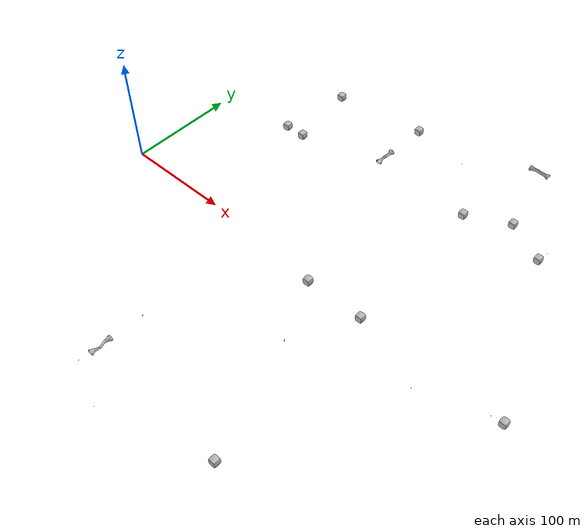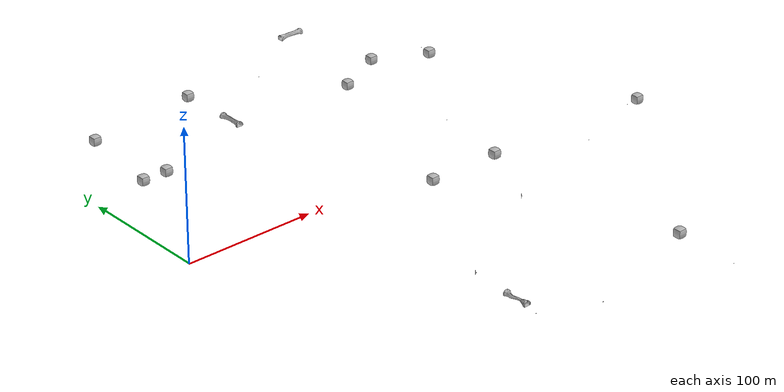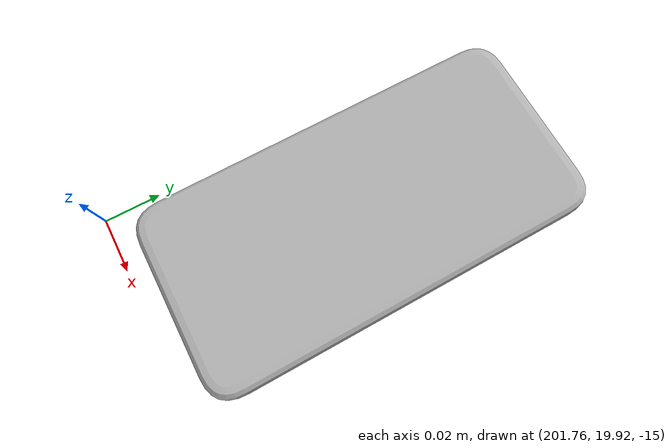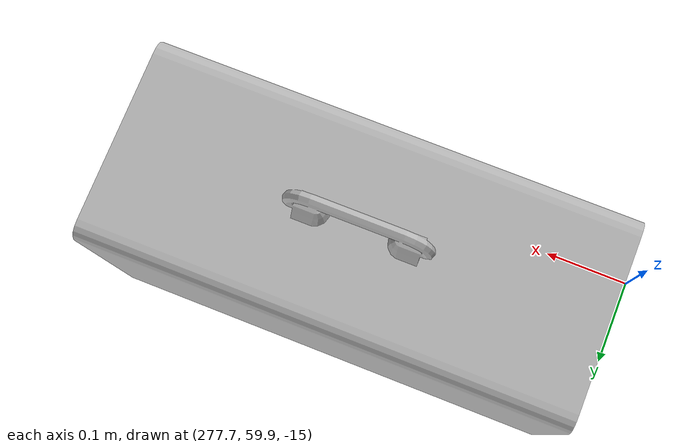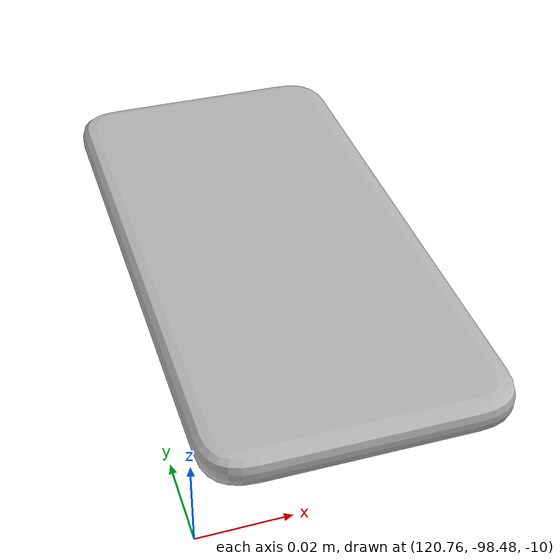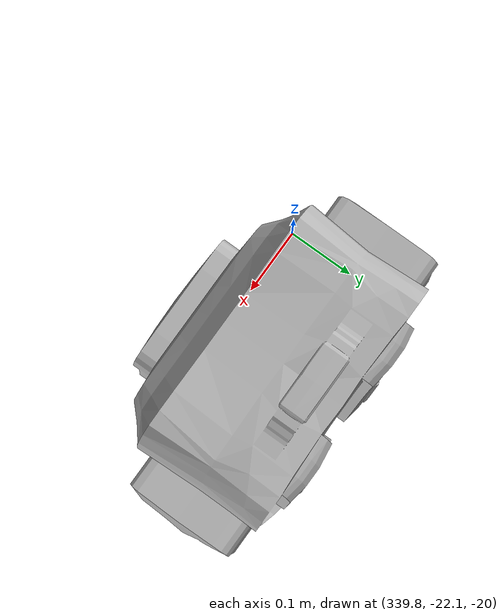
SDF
<sdf version="1.6">
 <world name="tunnel_qual">
  <scene>
   <ambient>0.2 0.2 0.2 1.0</ambient>
   <background>0.34 0.39 0.43 1.0</background>
   <grid>false</grid>
   <origin_visual>false</origin_visual>
  </scene>
  <include><name>artifact_origin</name><pose>2 4 0.5 0 0 0</pose><uri>model://fiducial</uri></include>
  <include>
   <name>tile_2</name>
   <uri>model://constrained_tunnel_tile_tall</uri>
   <pose>280.000000 240.000000 -15.000000 0 0 1.570796</pose>
  </include>
  <include>
   <name>tile_4</name>
   <uri>model://tunnel_tile_blocker</uri>
   <pose>160.000000 211.000000 -15.000000 0 0 0.000000</pose>
  </include>
  <include>
   <name>radio_1</name>
   <uri>model://Radio</uri>
   <pose>241.500000 220.000000 -15.000000 0 0 0.000000</pose>
  </include>
  <include>
   <name>tile_7</name>
   <uri>model://tunnel_tile_blocker</uri>
   <pose>69.000000 200.000000 -15.000000 0 0 0.000000</pose>
  </include>
  <include>
   <name>backpack_1</name>
   <uri>model://Backpack</uri>
   <pose>219.000000 202.000000 -15.000000 0 0 0.000000</pose>
  </include>
  <include>
   <name>tile_24</name>
   <uri>model://constrained_tunnel_tile_tall</uri>
   <pose>160.000000 160.000000 -15.000000 0 0 0.000000</pose>
  </include>
  <include>
   <name>phone_1</name>
   <uri>model://Phone</uri>
   <pose>260.000000 160.000000 -14.996000 -1.570796 0 0.000000</pose>
  </include>
  <include>
   <name>tile_26</name>
   <uri>model://tunnel_tile_blocker</uri>
   <pose>300.000000 169.000000 -15.000000 0 0 0.000000</pose>
  </include>
  <include>
   <name>toolbox_1</name>
   <uri>model://Toolbox</uri>
   <pose>342.000000 160.000000 -15.000000 0 0 0.000000</pose>
  </include>
  <include>
   <name>tile_28</name>
   <uri>model://tunnel_tile_blocker</uri>
   <pose>60.000000 131.000000 -15.000000 0 0 0.000000</pose>
  </include>
  <include>
   <name>tile_29</name>
   <uri>model://tunnel_tile_blocker</uri>
   <pose>80.000000 131.000000 -15.000000 0 0 0.000000</pose>
  </include>
  <include>
   <name>extinguisher_1</name>
   <uri>model://Extinguisher</uri>
   <pose>158.000000 140.000000 -15.000000 0 0 0.000000</pose>
  </include>
  <include>
   <name>tile_31</name>
   <uri>model://tunnel_tile_blocker</uri>
   <pose>260.000000 149.000000 -15.000000 0 0 0.000000</pose>
  </include>
  <include>
   <name>tile_32</name>
   <uri>model://tunnel_tile_blocker</uri>
   <pose>340.000000 149.000000 -15.000000 0 0 0.000000</pose>
  </include>
  <include>
   <name>radio_2</name>
   <uri>model://Radio</uri>
   <pose>260.000000 82.300000 -15.000000 0 0 0.000000</pose>
  </include>
  <include>
   <name>toolbox_2</name>
   <uri>model://Toolbox</uri>
   <pose>278.000000 60.000000 -15.000000 0 0 0.000000</pose>
  </include>
  <include>
   <name>phone_2</name>
   <uri>model://Phone</uri>
   <pose>201.800000 20.000000 -14.996000 -1.570796 0 0.000000</pose>
  </include>
  <include>
   <name>electrical_box_1</name>
   <uri>model://Electrical Box</uri>
   <pose>400.000000 -1.000000 -20.000000 0 0 0.000000</pose>
  </include>
  <include>
   <name>tile_70</name>
   <uri>model://tunnel_tile_blocker</uri>
   <pose>211.000000 0.000000 -15.000000 0 0 0.000000</pose>
  </include>
  <include>
   <name>tile_71</name>
   <uri>model://tunnel_tile_blocker</uri>
   <pose>269.000000 0.000000 -15.000000 0 0 0.000000</pose>
  </include>
  <include>
   <name>tile_79</name>
   <uri>model://tunnel_tile_blocker</uri>
   <pose>411.000000 0.000000 -20.000000 0 0 0.000000</pose>
  </include>
  <include>
   <name>backpack_2</name>
   <uri>model://Backpack</uri>
   <pose>340.000000 -22.000000 -20.000000 0 0 0.000000</pose>
  </include>
  <include>
   <name>phone_3</name>
   <uri>model://Phone</uri>
   <pose>120.800000 -98.400000 -9.996000 1.570796 0 0.000000</pose>
  </include>
  <include>
   <name>valve_1</name>
   <uri>model://Valve</uri>
   <pose>240.000000 -58.000000 -15.000000 0 0 0.000000</pose>
  </include>
  <include>
   <name>valve_2</name>
   <uri>model://Valve</uri>
   <pose>141.750000 -119.000000 -10.000000 0 0 0.000000</pose>
  </include>
  <include>
   <name>tile_102</name>
   <uri>model://constrained_tunnel_tile_short</uri>
   <pose>140.000000 -160.000000 -10.000000 0 0 0.000000</pose>
  </include>
  <include>
   <name>tile_103</name>
   <uri>model://tunnel_tile_blocker</uri>
   <pose>280.000000 -169.000000 -10.000000 0 0 0.000000</pose>
  </include>
  <include>
   <name>electrical_box_2</name>
   <uri>model://Electrical Box</uri>
   <pose>138.000000 -180.000000 -10.000000 0 0 0.000000</pose>
  </include>
  <include>
   <name>backpack_3</name>
   <uri>model://Backpack</uri>
   <pose>180.000000 -198.000000 -10.000000 0 0 0.000000</pose>
  </include>
  <include>
   <name>extinguisher_2</name>
   <uri>model://Extinguisher</uri>
   <pose>278.000000 -220.000000 -10.000000 0 0 0.000000</pose>
  </include>
  <plugin name="game_logic_plugin" filename="libGameLogicPlugin.so">
   <logging><filename_prefix>subt_tunnel_qual</filename_prefix></logging>
   <artifact><name>radio_1</name><type>TYPE_RADIO</type></artifact>
   <artifact><name>backpack_1</name><type>TYPE_BACKPACK</type></artifact>
   <artifact><name>phone_1</name><type>TYPE_PHONE</type></artifact>
   <artifact><name>toolbox_1</name><type>TYPE_TOOLBOX</type></artifact>
   <artifact><name>extinguisher_1</name><type>TYPE_EXTINGUISHER</type></artifact>
   <artifact><name>radio_2</name><type>TYPE_RADIO</type></artifact>
   <artifact><name>toolbox_2</name><type>TYPE_TOOLBOX</type></artifact>
   <artifact><name>phone_2</name><type>TYPE_PHONE</type></artifact>
   <artifact><name>electrical_box_1</name><type>TYPE_ELECTRICAL_BOX</type></artifact>
   <artifact><name>backpack_2</name><type>TYPE_BACKPACK</type></artifact>
   <artifact><name>phone_3</name><type>TYPE_PHONE</type></artifact>
   <artifact><name>valve_1</name><type>TYPE_VALVE</type></artifact>
   <artifact><name>valve_2</name><type>TYPE_VALVE</type></artifact>
   <artifact><name>electrical_box_2</name><type>TYPE_ELECTRICAL_BOX</type></artifact>
   <artifact><name>backpack_3</name><type>TYPE_BACKPACK</type></artifact>
   <artifact><name>extinguisher_2</name><type>TYPE_EXTINGUISHER</type></artifact>
  </plugin>
  <plugin name="comms_broker_plugin" filename="libCommsBrokerPlugin.so">
   <comms_model>
    <comms_model_type>visibility_range</comms_model_type>
    <range_config>
     <max_range>500.0</max_range>
     <fading_exponent>2.5</fading_exponent>
     <L0>40</L0>
     <sigma>10.0</sigma>
    </range_config>
    <visibility_config>
     <visibility_cost_to_fading_exponent>0.2</visibility_cost_to_fading_exponent>
     <comms_cost_max>15</comms_cost_max>
    </visibility_config>
    <radio_config>
     <capacity>1000000</capacity>
     <tx_power>20</tx_power>
     <noise_floor>-90</noise_floor>
     <modulation>QPSK</modulation>
    </radio_config>
   </comms_model>
  </plugin>
  <plugin name="ros_interface_plugin" filename="librotors_gazebo_ros_interface_plugin.so"/>
  <wind><linear_velocity>0.000000 0.000000 0.000000</linear_velocity></wind>
  <plugin name="wind" filename="libWindPlugin.so">
   <horizontal>
    <magnitude>
     <time_for_rise>10</time_for_rise>
     <sin><amplitude_percent>0.05</amplitude_percent><period>60</period></sin>
     <noise type="gaussian"><mean>0</mean><stddev>0.0002</stddev></noise>
    </magnitude>
    <direction>
     <time_for_rise>30</time_for_rise>
     <sin><amplitude>5</amplitude><period>20</period></sin>
     <noise type="gaussian"><mean>0</mean><stddev>0.03</stddev></noise>
    </direction>
   </horizontal>
   <vertical><noise type="gaussian"><mean>0</mean><stddev>0.03</stddev></noise></vertical>
  </plugin>
 </world>
</sdf>

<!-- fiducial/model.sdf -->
<sdf version='1.6'>
  <model name='fiducial'>
    <static>true</static>
    <link name='link'>
    </link>
  </model>
</sdf>

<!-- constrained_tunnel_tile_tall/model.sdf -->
<sdf version="1.6">
  <model name="constrained_tunnel_tile_tall">
    <static>true</static>
    <link name="link">
      <collision name="collision">
        <geometry>
          <mesh>
            <uri>model://constrained_tunnel_tile_tall/meshes/Constrained_Tall.DAE</uri>
          </mesh>
        </geometry>
      </collision>
      <collision name="collision_ground">
        <geometry>
          <box>
            <size>5 20 0.001</size>
          </box>
        </geometry>
      </collision>
      <visual name="visual">
        <geometry>
          <mesh>
            <uri>model://constrained_tunnel_tile_tall/meshes/Constrained_Tall.DAE</uri>
          </mesh>
        </geometry>
      </visual>
    </link>
  </model>
</sdf>

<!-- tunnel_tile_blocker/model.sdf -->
<sdf version="1.6">
  <model name="tunnel_tile_blocker">
    <static>true</static>
    <link name="link">
      <pose>0 0 0 0 0 0</pose>
      <collision name="collision">
        <geometry>
          <mesh>
            <uri>model://tunnel_tile_blocker/meshes/tunnel_tile_blocker.dae</uri>
          </mesh>
        </geometry>
      </collision>
      <visual name="visual">
        <geometry>
          <mesh>
            <uri>model://tunnel_tile_blocker/meshes/tunnel_tile_blocker.dae</uri>
          </mesh>
        </geometry>
      </visual>
    </link>
  </model>
</sdf>

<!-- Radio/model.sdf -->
<sdf version='1.6'>
  <model name='Radio'>
    <static>true</static>
    <link name='link'>
      <collision name='collision'>
        <geometry>
          <mesh>
            <uri>model://Radio/meshes/Radio.dae</uri>
          </mesh>
        </geometry>
      </collision>
      <visual name='visual'>
        <geometry>
          <mesh>
            <uri>model://Radio/meshes/Radio.dae</uri>
          </mesh>
        </geometry>
        <plugin name='light_source_visualize' filename='libLightVisualPlugin.so'>
          <light>
            <id>light_source</id>
            <visualize>false</visualize>
          </light>
        </plugin>
      </visual>
      <light name='light_source' type='point'>
        <pose>0.0137 -0.02 0.109 0 0 0</pose>
        <attenuation>
          <range>2.0</range>
          <constant>0.2</constant>
          <linear>0.10</linear>
          <quadratic>0.1</quadratic>
        </attenuation>
        <diffuse>1 0 0 1</diffuse>
        <specular>1 0 0 1</specular>
      </light>
    </link>

    <plugin name='light_control' filename='libFlashLightPlugin.so'>
      <light>
        <id>link/light_source</id>
        <duration>1.0</duration>
        <interval>3.0</interval>
        <color>1 0 0</color>
      </light>
    </plugin>

  </model>
</sdf>

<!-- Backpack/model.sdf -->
<sdf version='1.6'>
  <model name='Backpack'>
    <static>true</static>
    <link name='link'>
      <collision name='collision'>
        <geometry>
          <mesh>
            <uri>model://Backpack/meshes/Backpack.dae</uri>
          </mesh>
        </geometry>
      </collision>
      <visual name='visual'>
        <geometry>
          <mesh>
            <uri>model://Backpack/meshes/Backpack.dae</uri>
          </mesh>
        </geometry>
      </visual>
    </link>
  </model>
</sdf>

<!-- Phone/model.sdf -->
<sdf version='1.6'>
  <model name='Phone'>
    <static>true</static>
    <link name='link'>
      <collision name='collision'>
        <geometry>
          <mesh>
            <uri>model://Phone/meshes/Phone.dae</uri>
          </mesh>
        </geometry>
      </collision>
      <visual name='visual'>
        <geometry>
          <mesh>
            <uri>model://Phone/meshes/Phone.dae</uri>
          </mesh>
        </geometry>
      </visual>
    </link>
  </model>
</sdf>

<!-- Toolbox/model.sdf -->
<sdf version='1.6'>
  <model name='Toolbox'>
    <static>true</static>
    <link name='link'>
      <collision name='collision'>
        <geometry>
          <mesh>
            <uri>model://Toolbox/meshes/Toolbox.dae</uri>
          </mesh>
        </geometry>
      </collision>
      <visual name='visual'>
        <geometry>
          <mesh>
            <uri>model://Toolbox/meshes/Toolbox.dae</uri>
          </mesh>
        </geometry>
      </visual>
    </link>
  </model>
</sdf>

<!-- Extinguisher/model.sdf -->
<sdf version='1.6'>
  <model name='Extinguisher'>
    <static>true</static>
    <link name='link'>
      <collision name='collision'>
        <geometry>
          <mesh>
            <uri>model://Extinguisher/meshes/Extinguisher.dae</uri>
          </mesh>
        </geometry>
      </collision>
      <visual name='visual'>
        <geometry>
          <mesh>
            <uri>model://Extinguisher/meshes/Extinguisher.dae</uri>
          </mesh>
        </geometry>
      </visual>
    </link>
  </model>
</sdf>

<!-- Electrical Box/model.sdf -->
<sdf version='1.6'>
  <model name='Electrical Box'>
    <static>true</static>
    <link name='link'>
      <pose>0 0 0 1.57 3.14159 0</pose>
      <collision name='collision'>
        <geometry>
          <mesh>
            <uri>model://Electrical Box/meshes/Electrical Box.dae</uri>
          </mesh>
        </geometry>
      </collision>
      <visual name='visual'>
        <geometry>
          <mesh>
            <uri>model://Electrical Box/meshes/Electrical Box.dae</uri>
          </mesh>
        </geometry>
      </visual>
    </link>
  </model>
</sdf>

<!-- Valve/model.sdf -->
<sdf version='1.6'>
  <model name='Valve'>
    <static>true</static>
    <link name='link'>
      <collision name='collision'>
        <geometry>
          <mesh>
            <uri>model://Valve/meshes/Valve.dae</uri>
          </mesh>
        </geometry>
      </collision>
      <visual name='visual'>
        <geometry>
          <mesh>
            <uri>model://Valve/meshes/Valve.dae</uri>
          </mesh>
        </geometry>
      </visual>
    </link>
  </model>
</sdf>

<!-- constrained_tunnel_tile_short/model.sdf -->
<sdf version="1.6">
  <model name="constrained_tunnel_tile_short">
    <static>true</static>
    <link name="link">
      <collision name="collision">
        <geometry>
          <mesh>
            <uri>model://constrained_tunnel_tile_short/meshes/Constrained_Short.DAE</uri>
          </mesh>
        </geometry>
      </collision>
      <collision name="collision_ground">
        <geometry>
          <box>
            <size>5 20 0.001</size>
          </box>
        </geometry>
      </collision>
      <visual name="visual">
        <geometry>
          <mesh>
            <uri>model://constrained_tunnel_tile_short/meshes/Constrained_Short.DAE</uri>
          </mesh>
        </geometry>
      </visual>
    </link>
  </model>
</sdf>
